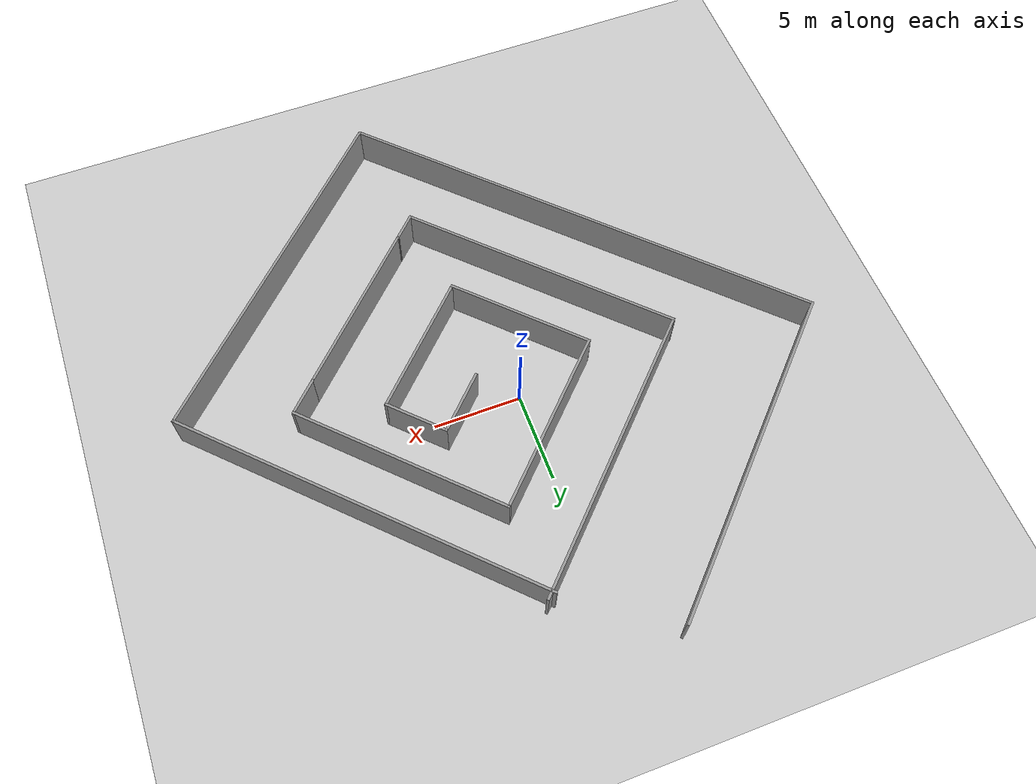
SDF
<sdf version="1.7">
 <world name="default">
  <light name="sun" type="directional">
   <pose>0 0 10 0 -0 0</pose>
   <diffuse>0.8 0.8 0.8 1</diffuse>
   <specular>0.2 0.2 0.2 1</specular>
   <attenuation>
    <range>1000</range>
    <constant>0.9</constant>
    <linear>0.01</linear>
    <quadratic>0.001</quadratic>
   </attenuation>
   <direction>-0.5 0.1 -0.9</direction>
   <spot><inner_angle>0</inner_angle><outer_angle>0</outer_angle><falloff>0</falloff></spot>
  </light>
  <model name="ground_plane">
   <static>1</static>
   <link name="link">
    <collision name="collision">
     <geometry><plane><normal>0 0 1</normal><size>100 100</size></plane></geometry>
     <surface><friction><ode><mu>100</mu><mu2>50</mu2></ode></friction></surface>
    </collision>
    <visual name="visual">
     <cast_shadows>0</cast_shadows>
     <geometry><plane><normal>0 0 1</normal><size>100 100</size></plane></geometry>
     <material>
      <script><uri>file://media/materials/scripts/gazebo.material</uri><name>Gazebo/Grey</name></script>
     </material>
    </visual>
   </link>
  </model>
  <gravity>0 0 -9.8</gravity>
  <magnetic_field>6e-06 2.3e-05 -4.2e-05</magnetic_field>
  <atmosphere type="adiabatic"/>
  <physics type="ode">
   <max_step_size>0.001</max_step_size>
   <real_time_factor>1</real_time_factor>
   <real_time_update_rate>1000</real_time_update_rate>
  </physics>
  <scene><ambient>0.4 0.4 0.4 1</ambient><background>0.7 0.7 0.7 1</background><shadows>1</shadows></scene>
  <audio><device>default</device></audio>
  <spherical_coordinates>
   <surface_model>EARTH_WGS84</surface_model>
   <latitude_deg>0</latitude_deg>
   <longitude_deg>0</longitude_deg>
   <elevation>0</elevation>
   <heading_deg>0</heading_deg>
  </spherical_coordinates>
  <model name="Spiral">
   <pose>0.571251 -1.89139 0 0 -0 0</pose>
   <link name="Wall_10">
    <collision name="Wall_10_Collision">
     <geometry><box><size>12.75 0.15 2.5</size></box></geometry>
     <pose>0 0 1.25 0 -0 0</pose>
    </collision>
    <visual name="Wall_10_Visual">
     <pose>0 0 1.25 0 -0 0</pose>
     <geometry><box><size>12.75 0.15 2.5</size></box></geometry>
     <material>
      <script><uri>file://media/materials/scripts/gazebo.material</uri><name>Gazebo/Grey</name></script>
      <ambient>1 1 1 1</ambient>
     </material>
     <meta><layer>0</layer></meta>
    </visual>
    <pose>7.00604 3.99152 0 0 -0 -0.785398</pose>
   </link>
   <link name="Wall_11">
    <collision name="Wall_11_Collision">
     <geometry><box><size>2.25 0.15 2.5</size></box></geometry>
     <pose>0 0 1.25 0 -0 0</pose>
    </collision>
    <visual name="Wall_11_Visual">
     <pose>0 0 1.25 0 -0 0</pose>
     <geometry><box><size>2.25 0.15 2.5</size></box></geometry>
     <material>
      <script><uri>file://media/materials/scripts/gazebo.material</uri><name>Gazebo/Grey</name></script>
      <ambient>1 1 1 1</ambient>
     </material>
     <meta><layer>0</layer></meta>
    </visual>
    <pose>10.7184 -1.20572 0 0 -0 -2.35619</pose>
   </link>
   <link name="Wall_13">
    <collision name="Wall_13_Collision">
     <geometry><box><size>10.25 0.15 2.5</size></box></geometry>
     <pose>0 0 1.25 0 -0 0</pose>
    </collision>
    <visual name="Wall_13_Visual">
     <pose>0 0 1.25 0 -0 0</pose>
     <geometry><box><size>10.25 0.15 2.5</size></box></geometry>
     <material>
      <script><uri>file://media/materials/scripts/gazebo.material</uri><name>Gazebo/Grey</name></script>
      <ambient>1 1 1 1</ambient>
     </material>
     <meta><layer>0</layer></meta>
    </visual>
    <pose>6.405 -5.51907 0 0 -0 -2.35619</pose>
   </link>
   <link name="Wall_14">
    <collision name="Wall_14_Collision">
     <geometry><box><size>0.15 0.15 2.5</size></box></geometry>
     <pose>0 0 1.25 0 -0 0</pose>
    </collision>
    <visual name="Wall_14_Visual">
     <pose>0 0 1.25 0 -0 0</pose>
     <geometry><box><size>0.15 0.15 2.5</size></box></geometry>
     <material>
      <script><uri>file://media/materials/scripts/gazebo.material</uri><name>Gazebo/Grey</name></script>
      <ambient>1 1 1 1</ambient>
     </material>
     <meta><layer>0</layer></meta>
    </visual>
    <pose>2.83411 -9.08996 0 0 -0 0</pose>
   </link>
   <link name="Wall_16">
    <collision name="Wall_16_Collision">
     <geometry><box><size>1.75 0.15 2.5</size></box></geometry>
     <pose>0 0 1.25 0 -0 0</pose>
    </collision>
    <visual name="Wall_16_Visual">
     <pose>0 0 1.25 0 -0 0</pose>
     <geometry><box><size>1.75 0.15 2.5</size></box></geometry>
     <material>
      <script><uri>file://media/materials/scripts/gazebo.material</uri><name>Gazebo/Grey</name></script>
      <ambient>1 1 1 1</ambient>
     </material>
     <meta><layer>0</layer></meta>
    </visual>
    <pose>2.26843 -9.65564 0 0 -0 -2.35619</pose>
   </link>
   <link name="Wall_17">
    <collision name="Wall_17_Collision">
     <geometry><box><size>16.5 0.15 2.5</size></box></geometry>
     <pose>0 0 1.25 0 -0 0</pose>
    </collision>
    <visual name="Wall_17_Visual">
     <pose>0 0 1.25 0 -0 0</pose>
     <geometry><box><size>16.5 0.15 2.5</size></box></geometry>
     <material>
      <script><uri>file://media/materials/scripts/gazebo.material</uri><name>Gazebo/Grey</name></script>
      <ambient>1 1 1 1</ambient>
     </material>
     <meta><layer>0</layer></meta>
    </visual>
    <pose>-4.07786 -4.44073 0 0 -0 2.35619</pose>
   </link>
   <link name="Wall_18">
    <collision name="Wall_18_Collision">
     <geometry><box><size>0.15 0.15 2.5</size></box></geometry>
     <pose>0 0 1.25 0 -0 0</pose>
    </collision>
    <visual name="Wall_18_Visual">
     <pose>0 0 1.25 0 -0 0</pose>
     <geometry><box><size>0.15 0.15 2.5</size></box></geometry>
     <material>
      <script><uri>file://media/materials/scripts/gazebo.material</uri><name>Gazebo/Grey</name></script>
      <ambient>1 1 1 1</ambient>
     </material>
     <meta><layer>0</layer></meta>
    </visual>
    <pose>-9.85846 1.33987 0 0 -0 0</pose>
   </link>
   <link name="Wall_21">
    <collision name="Wall_21_Collision">
     <geometry><box><size>17.5 0.15 2.5</size></box></geometry>
     <pose>0 0 1.25 0 -0 0</pose>
    </collision>
    <visual name="Wall_21_Visual">
     <pose>0 0 1.25 0 -0 0</pose>
     <geometry><box><size>17.5 0.15 2.5</size></box></geometry>
     <material>
      <script><uri>file://media/materials/scripts/gazebo.material</uri><name>Gazebo/Grey</name></script>
      <ambient>1 1 1 1</ambient>
     </material>
     <meta><layer>0</layer></meta>
    </visual>
    <pose>-3.72431 7.47402 0 0 -0 0.785398</pose>
   </link>
   <link name="Wall_24">
    <collision name="Wall_24_Collision">
     <geometry><box><size>22.25 0.15 2.5</size></box></geometry>
     <pose>0 0 1.25 0 -0 0</pose>
    </collision>
    <visual name="Wall_24_Visual">
     <pose>0 0 1.25 0 -0 0</pose>
     <geometry><box><size>22.25 0.15 2.5</size></box></geometry>
     <material>
      <script><uri>file://media/materials/scripts/gazebo.material</uri><name>Gazebo/Grey</name></script>
      <ambient>1 1 1 1</ambient>
     </material>
     <meta><layer>0</layer></meta>
    </visual>
    <pose>9.75807 5.60382 0 0 -0 -0.785398</pose>
   </link>
   <link name="Wall_25">
    <collision name="Wall_25_Collision">
     <geometry><box><size>21.25 0.15 2.5</size></box></geometry>
     <pose>0 0 1.25 0 -0 0</pose>
    </collision>
    <visual name="Wall_25_Visual">
     <pose>0 0 1.25 0 -0 0</pose>
     <geometry><box><size>21.25 0.15 2.5</size></box></geometry>
     <material>
      <script><uri>file://media/materials/scripts/gazebo.material</uri><name>Gazebo/Grey</name></script>
      <ambient>1 1 1 1</ambient>
     </material>
     <meta><layer>0</layer></meta>
    </visual>
    <pose>10.1116 -9.66968 0 0 -0 -2.35619</pose>
   </link>
   <link name="Wall_26">
    <collision name="Wall_26_Collision">
     <geometry><box><size>28.75 0.15 2.5</size></box></geometry>
     <pose>0 0 1.25 0 -0 0</pose>
    </collision>
    <visual name="Wall_26_Visual">
     <pose>0 0 1.25 0 -0 0</pose>
     <geometry><box><size>28.75 0.15 2.5</size></box></geometry>
     <material>
      <script><uri>file://media/materials/scripts/gazebo.material</uri><name>Gazebo/Grey</name></script>
      <ambient>1 1 1 1</ambient>
     </material>
     <meta><layer>0</layer></meta>
    </visual>
    <pose>-7.45998 -7.01804 0 0 -0 2.35619</pose>
   </link>
   <link name="Wall_27">
    <collision name="Wall_27_Collision">
     <geometry><box><size>20 0.15 2.5</size></box></geometry>
     <pose>0 0 1.25 0 -0 0</pose>
    </collision>
    <visual name="Wall_27_Visual">
     <pose>0 0 1.25 0 -0 0</pose>
     <geometry><box><size>20 0.15 2.5</size></box></geometry>
     <material>
      <script><uri>file://media/materials/scripts/gazebo.material</uri><name>Gazebo/Grey</name></script>
      <ambient>1 1 1 1</ambient>
     </material>
     <meta><layer>0</layer></meta>
    </visual>
    <pose>-10.5536 10.1116 0 0 -0 0.785398</pose>
   </link>
   <link name="Wall_3">
    <collision name="Wall_3_Collision">
     <geometry><box><size>3.75 0.15 2.5</size></box></geometry>
     <pose>0 0 1.25 0 -0 0</pose>
    </collision>
    <visual name="Wall_3_Visual">
     <pose>0 0 1.25 0 -0 0</pose>
     <geometry><box><size>3.75 0.15 2.5</size></box></geometry>
     <material>
      <script><uri>file://media/materials/scripts/gazebo.material</uri><name>Gazebo/Grey</name></script>
      <ambient>1 1 1 1</ambient>
     </material>
     <meta><layer>0</layer></meta>
    </visual>
    <pose>2.86946 2.04697 0 0 -0 0.785398</pose>
   </link>
   <link name="Wall_4">
    <collision name="Wall_4_Collision">
     <geometry><box><size>3.75 0.15 2.5</size></box></geometry>
     <pose>0 0 1.25 0 -0 0</pose>
    </collision>
    <visual name="Wall_4_Visual">
     <pose>0 0 1.25 0 -0 0</pose>
     <geometry><box><size>3.75 0.15 2.5</size></box></geometry>
     <material>
      <script><uri>file://media/materials/scripts/gazebo.material</uri><name>Gazebo/Grey</name></script>
      <ambient>1 1 1 1</ambient>
     </material>
     <meta><layer>0</layer></meta>
    </visual>
    <pose>5.41505 2.04697 0 0 -0 -0.785398</pose>
   </link>
   <link name="Wall_6">
    <collision name="Wall_6_Collision">
     <geometry><box><size>8.25 0.15 2.5</size></box></geometry>
     <pose>0 0 1.25 0 -0 0</pose>
    </collision>
    <visual name="Wall_6_Visual">
     <pose>0 0 1.25 0 -0 0</pose>
     <geometry><box><size>8.25 0.15 2.5</size></box></geometry>
     <material>
      <script><uri>file://media/materials/scripts/gazebo.material</uri><name>Gazebo/Grey</name></script>
      <ambient>1 1 1 1</ambient>
     </material>
     <meta><layer>0</layer></meta>
    </visual>
    <pose>3.82406 -2.0896 0 0 -0 -2.35619</pose>
   </link>
   <link name="Wall_7">
    <collision name="Wall_7_Collision">
     <geometry><box><size>8.5 0.15 2.5</size></box></geometry>
     <pose>0 0 1.25 0 -0 0</pose>
    </collision>
    <visual name="Wall_7_Visual">
     <pose>0 0 1.25 0 -0 0</pose>
     <geometry><box><size>8.5 0.15 2.5</size></box></geometry>
     <material>
      <script><uri>file://media/materials/scripts/gazebo.material</uri><name>Gazebo/Grey</name></script>
      <ambient>1 1 1 1</ambient>
     </material>
     <meta><layer>0</layer></meta>
    </visual>
    <pose>-1.99189 -2.00121 0 0 -0 2.35619</pose>
   </link>
   <link name="Wall_9">
    <collision name="Wall_9_Collision">
     <geometry><box><size>10.75 0.15 2.5</size></box></geometry>
     <pose>0 0 1.25 0 -0 0</pose>
    </collision>
    <visual name="Wall_9_Visual">
     <pose>0 0 1.25 0 -0 0</pose>
     <geometry><box><size>10.75 0.15 2.5</size></box></geometry>
     <material>
      <script><uri>file://media/materials/scripts/gazebo.material</uri><name>Gazebo/Grey</name></script>
      <ambient>1 1 1 1</ambient>
     </material>
     <meta><layer>0</layer></meta>
    </visual>
    <pose>-1.1964 4.69862 0 0 -0 0.785398</pose>
   </link>
   <static>1</static>
  </model>
 </world>
</sdf>
